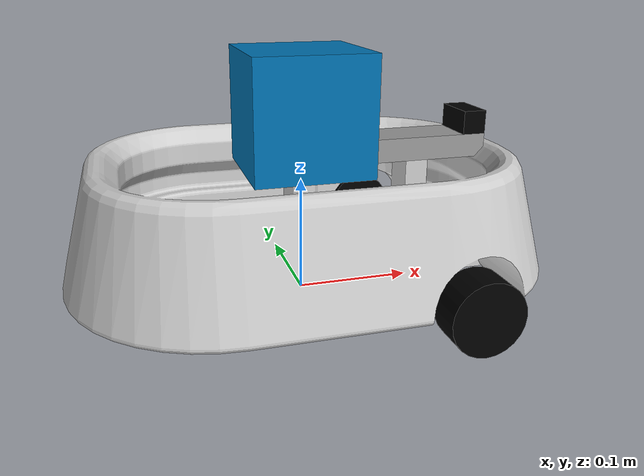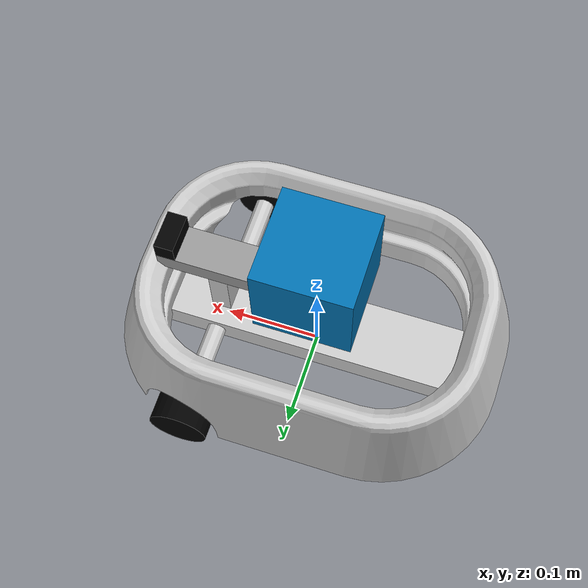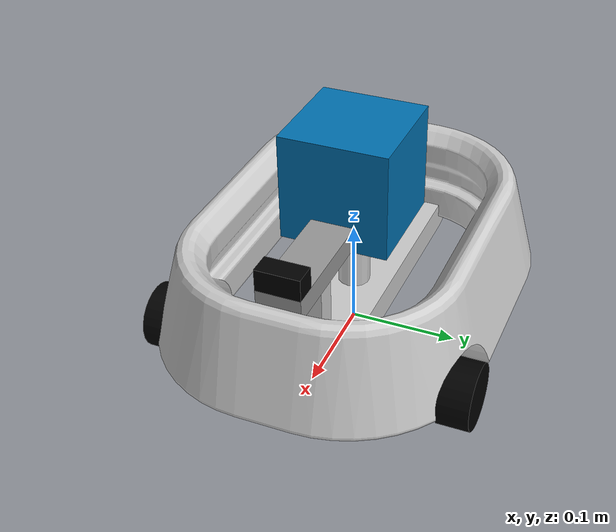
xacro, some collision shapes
<?xml version='1.0'?>

<robot name="my_robot" xmlns:xacro="http://www.ros.org/wiki/xacro">
  <xacro:include filename="$(find my_robot)/urdf/my_robot.gazebo" />

   <material name="black">
      <color rgba="0 0 0 1"/>
   </material>

   <material name="silver">
      <color rgba="0.8 0.8 0.8 1"/>
   </material>

  <link name="robot_footprint"></link>

  <joint name="robot_footprint_joint" type="fixed">
    <origin xyz="0 0 0" rpy="0 0 3.1415" />
    <parent link="robot_footprint"/>
    <child link="chassis" />
  </joint>

  <link name='chassis'>

    <inertial>
      <mass value="15.0"/>
      <origin xyz="0.0 0 0" rpy=" 0 0 0"/>
      <inertia
          ixx="0.1" ixy="0" ixz="0"
          iyy="0.1" iyz="0"
          izz="0.1"/>
    </inertial>

    <collision name='collision'>
      <origin xyz="0 0 0" rpy=" 0 0 0"/>
      <geometry>
        <mesh filename="package://my_robot/meshes/base_link.stl"/>
      </geometry>
    </collision>

    <visual name='chassis_visual'>
      <origin xyz="0 0 0" rpy=" 0 0 0"/>
      <geometry>
        <mesh filename="package://my_robot/meshes/base_link.stl"/>
      </geometry>
      <material name="silver"/>
    </visual>

  </link>

  <link name='left_wheel'>

    <inertial>
      <mass value="5.0"/>
      <origin xyz="0.0 0 0" rpy=" 0 1.5707 1.5707 "/>
      <inertia
          ixx="0.1" ixy="0" ixz="0"
          iyy="0.1" iyz="0"
          izz="0.1"/>
    </inertial>

    <collision name='left_wheel_collision'>
      <origin xyz="0 0 0" rpy=" 0 1.5707 1.5707"/>
      <geometry>
        <cylinder radius="0.03" length="0.03"/>
      </geometry>
    </collision>

    <visual name='left_wheel_visual'>
      <origin xyz="0 0 0" rpy=" 0 1.5707 1.5707"/>
      <color rgba="0.0 0.0 0.0 150.0"/>
      <geometry>
        <cylinder radius="0.03" length="0.03"/>
      </geometry>
      <material name="black"/>
    </visual>

  </link>

  <joint type="continuous" name="left_wheel_hinge">
    <origin xyz="-0.10 -0.1375 0.03" rpy="0 0 3.1415"/>
    <child link="left_wheel"/>
    <parent link="chassis"/>
    <axis xyz="0 1 0" rpy="0 0 0"/>
    <limit effort="10000" velocity="1000"/>
    <dynamics damping="1.0" friction="1.0"/>
  </joint>

  <link name='right_wheel'>

    <inertial>
      <mass value="5.0"/>
      <origin xyz="0.0 0 0" rpy=" 0 1.5707 1.5707 "/>
      <inertia
          ixx="0.1" ixy="0" ixz="0"
          iyy="0.1" iyz="0"
          izz="0.1"/>
    </inertial>

    <collision name='right_wheel_collision'>
      <origin xyz="0 0 0" rpy=" 0 1.5707 1.5707"/>
      <geometry>
        <cylinder radius="0.03" length="0.03"/>
      </geometry>
    </collision>

    <visual name='right_wheel_visual'>
      <origin xyz="0 0 0" rpy=" 0 1.5707 1.5707"/>
      <color rgba="0.0 0.0 0.0 150.0"/>
      <geometry>
        <cylinder radius="0.03" length="0.03"/>
      </geometry>
      <material name="black"/>
    </visual>

  </link>

  <joint type="continuous" name="right_wheel_hinge">
    <origin xyz="-0.10 0.1375 0.03" rpy="0 0 3.1415"/>
    <child link="right_wheel"/>
    <parent link="chassis"/>
    <axis xyz="0 1 0" rpy="0 0 0"/>
    <limit effort="10000" velocity="1000"/>
    <dynamics damping="1.0" friction="1.0"/>
  </joint>

  <link name='hokuyo'>

    <visual name='hokuyo_visual'>
    <origin xyz="0 0 0" rpy=" 0 0 0"/>
      <geometry>
        <mesh filename="package://my_robot/meshes/hokuyo.dae"/>
      </geometry>
    </visual>

    <collision name='hokuyo_collision'>
      <origin xyz="0 0 0" rpy=" 0 0 0"/>
      <geometry>
        <box size=".1 .1 .1"/>
      </geometry>
    </collision>

    <inertial>
      <mass value="1e-5"/>
      <origin xyz="0 0 0" rpy=" 0 0 0 "/>
      <inertia
         ixx="1e-6" ixy="0" ixz="0"
         iyy="1e-6" iyz="0"
         izz="1e-6"/>
     </inertial>

   </link>

    <joint type="fixed" name="hokuyo_joint">
    	<origin xyz="0 0 0.16" rpy="0 0 0"/>
   	  <child link="hokuyo"/>
    	<parent link="chassis"/>
    	<axis xyz="0 1 0" rpy="0 0 0"/>
    </joint>

    <link name='camera_base'>

      <visual name='camera_base_visual'>
      <origin xyz="0 0 0" rpy=" 0 0 0"/>
        <geometry>
          <box size=".12 .04 .02"/>
        </geometry>
      </visual>

      <collision name='camera_base_collision'>
        <origin xyz="0 0 0" rpy=" 0 0 0"/>
        <geometry>
          <box size=".12 .04 .02"/>
        </geometry>
      </collision>

      <inertial>
        <mass value="1e-5"/>
        <origin xyz="0 0 0" rpy=" 0 0 0 "/>
        <inertia
          ixx="1e-6" ixy="0" ixz="0"
          iyy="1e-6" iyz="0"
          izz="1e-6"
      />
      </inertial>

    </link>

    <joint type="fixed" name="camera_base_joint">
    	<origin xyz="-0.1 0 0.125" rpy="0 0 0"/>
   	  <child link="camera_base"/>
    	<parent link="chassis"/>
    	<axis xyz="0 1 0" rpy="0 0 0"/>
    </joint>

  <link name='camera'>

    <visual name='camera_visual'>
      <origin xyz="0 0 0" rpy=" 0 0 0"/>
      <geometry>
        <box size=".02 .04 .02"/>
      </geometry>
      <material name="black"/>
    </visual>

    <collision name='camera_collision'>
      <origin xyz="0 0 0" rpy=" 0 0 0"/>
      <geometry>
        <box size=".02 .04 .02"/>
      </geometry>
    </collision>

    <inertial>
      <mass value="1e-5"/>
      <origin xyz="0 0 0" rpy=" 0 0 0 "/>
      <inertia
         ixx="1e-6" ixy="0" ixz="0"
         iyy="1e-6" iyz="0"
         izz="1e-6"/>
     </inertial>

  </link>

  <joint type="fixed" name="camera_joint">
    <origin xyz="-0.15 0 0.145" rpy="0 0 3.1415"/>
    <child link="camera"/>
    <parent link="chassis"/>
    <axis xyz="0 1 0" rpy="0 0 0"/>
  </joint>

  <gazebo reference="camera">
    <material>Gazebo/Black</material>
  </gazebo>
  <gazebo reference="left_wheel">
    <material>Gazebo/Black</material>
  </gazebo>
  <gazebo reference="right_wheel">
    <material>Gazebo/Black</material>
  </gazebo>
  <gazebo reference="chassis">
    <material>Gazebo/Gray</material>
  </gazebo>
  <gazebo reference="camera_base">
    <material>Gazebo/Gray</material>
  </gazebo>

</robot>
